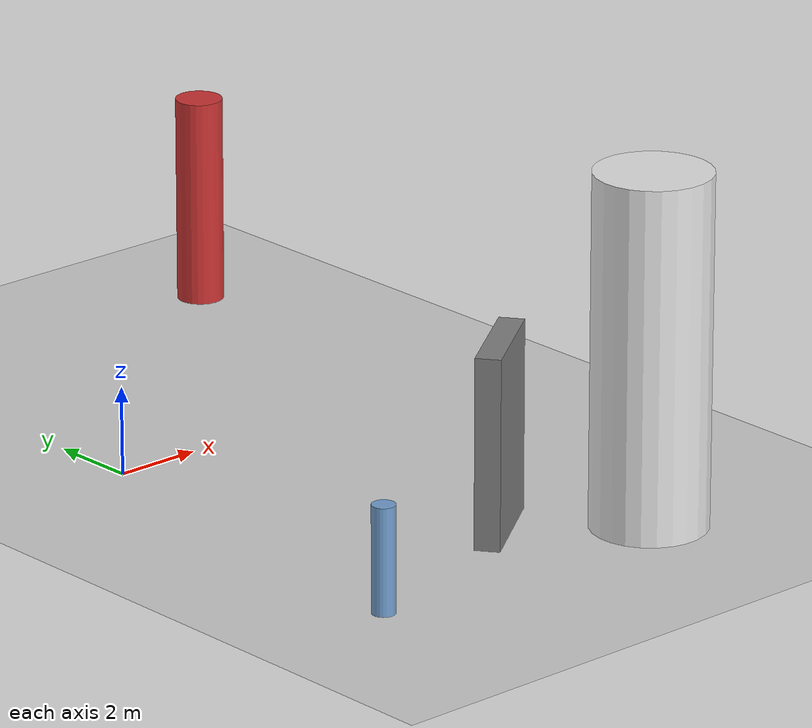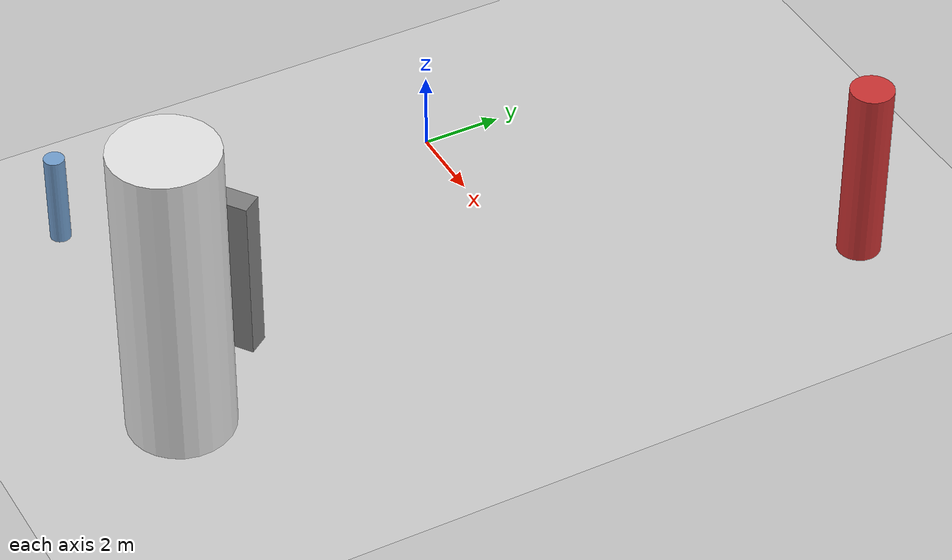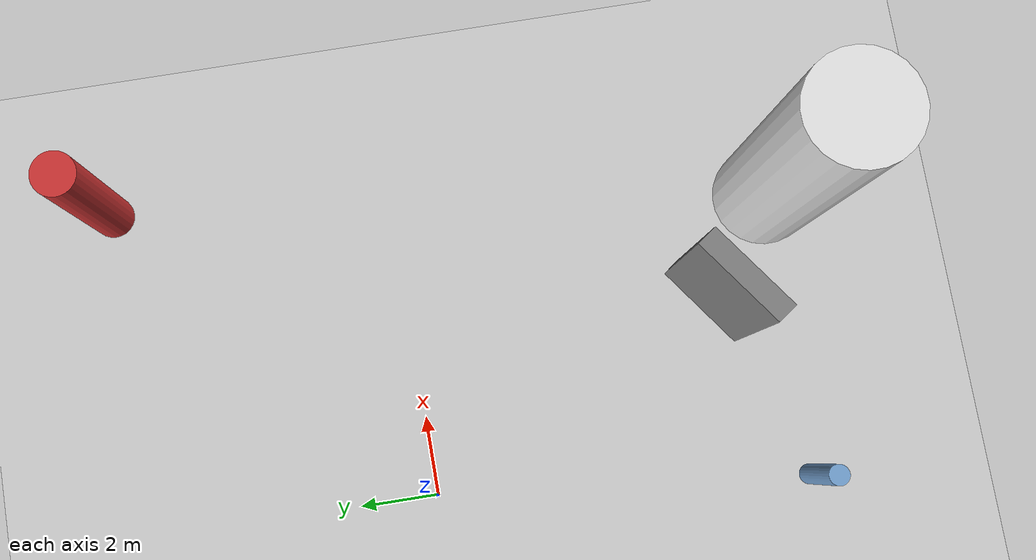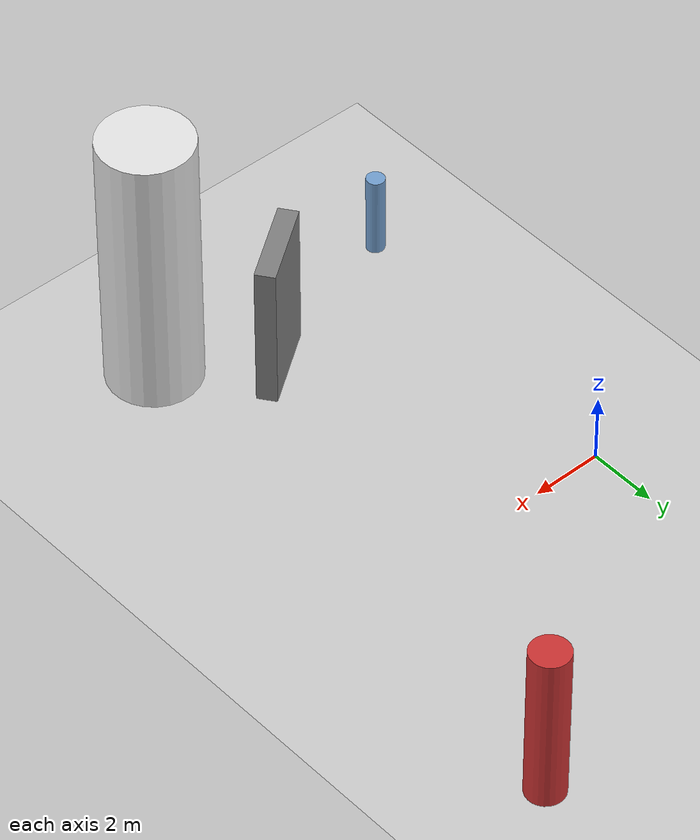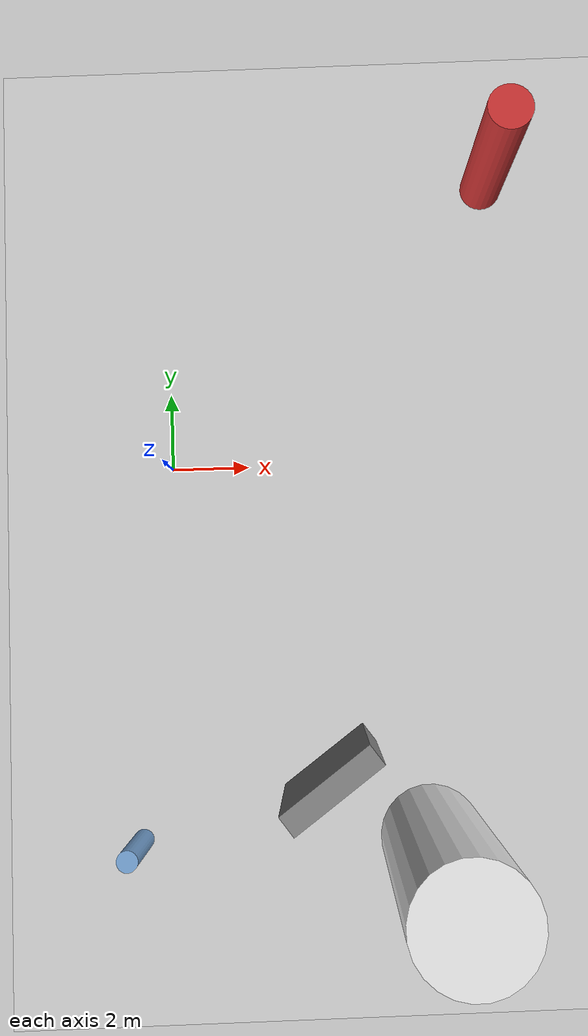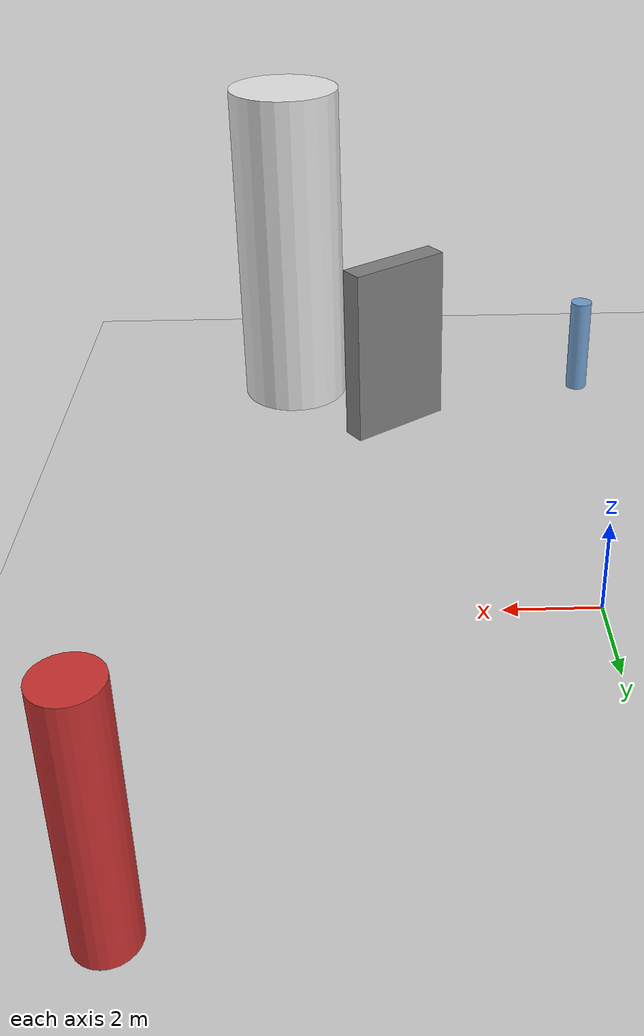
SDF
<?xml version='1.0'?>
<sdf version='1.6'>
  <world name='default'>
    <!-- Sun light -->
    <light name='sun' type='directional'>
      <cast_shadows>1</cast_shadows>
      <pose>0 0 10 0 0 0</pose>
      <diffuse>0.8 0.8 0.8 1</diffuse>
      <specular>0.2 0.2 0.2 1</specular>
      <attenuation>
        <range>1000</range>
        <constant>0.9</constant>
        <linear>0.01</linear>
        <quadratic>0.001</quadratic>
      </attenuation>
      <direction>-0.5 0.1 -0.9</direction>
    </light>

    <!-- Ground plane -->
    <model name='ground_plane'>
      <static>1</static>
      <link name='link'>
        <collision name='collision'>
          <geometry>
            <plane>
              <normal>0 0 1</normal>
              <size>100 100</size>
            </plane>
          </geometry>
          <surface>
            <contact>
              <collide_bitmask>65535</collide_bitmask>
              <ode/>
            </contact>
            <friction>
              <ode>
                <mu>100</mu>
                <mu2>50</mu2>
              </ode>
              <torsional><ode/></torsional>
            </friction>
            <bounce/>
          </surface>
          <max_contacts>10</max_contacts>
        </collision>
        <visual name='visual'>
          <cast_shadows>0</cast_shadows>
          <geometry>
            <plane>
              <normal>0 0 1</normal>
              <size>100 100</size>
            </plane>
          </geometry>
          <material>
            <script>
              <uri>file://media/materials/scripts/gazebo.material</uri>
              <n>Gazebo/Grey</n>
            </script>
          </material>
        </visual>
      </link>
    </model>

    <!-- Environment -->
    <magnetic_field>6e-06 2.3e-05 -4.2e-05</magnetic_field>
    <atmosphere type='adiabatic'/>
    <physics name='default_physics' default='0' type='ode'>
      <gravity>0 0 -9.8</gravity>
      <max_step_size>0.004</max_step_size>
      <real_time_factor>1</real_time_factor>
      <real_time_update_rate>250</real_time_update_rate>
    </physics>
    <scene>
      <ambient>0.4 0.4 0.4 1</ambient>
      <background>0.7 0.7 0.7 1</background>
      <shadows>1</shadows>
    </scene>
    <wind/>
    <spherical_coordinates>
      <surface_model>EARTH_WGS84</surface_model>
      <latitude_deg>0</latitude_deg>
      <longitude_deg>0</longitude_deg>
      <elevation>0</elevation>
      <heading_deg>0</heading_deg>
    </spherical_coordinates>

    <!-- ============ OBSTACLES (4) ============ -->
    <model name='obs_00'>
      <static>1</static>
      <link name='link'>
        <visual name='visual'>
          <geometry>
            <cylinder>
              <radius>0.5420</radius>
              <length>4.8250</length>
            </cylinder>
          </geometry>
          <material>
            <script>
              <n>Gazebo/Red</n>
              <uri>file://media/materials/scripts/gazebo.material</uri>
            </script>
            <ambient>0.8 0.2 0.2 1</ambient>
          </material>
        </visual>
        <collision name='collision'>
          <geometry>
            <cylinder>
              <radius>0.5420</radius>
              <length>4.8250</length>
            </cylinder>
          </geometry>
          <max_contacts>10</max_contacts>
          <surface>
            <contact><ode/></contact>
            <bounce/>
            <friction>
              <ode><mu>1</mu><mu2>1</mu2></ode>
              <torsional><ode/></torsional>
            </friction>
          </surface>
        </collision>
      </link>
      <pose>8.5346 7.3750 2.4125 0 0 2.3248</pose>
    </model>

    <model name='obs_01'>
      <static>1</static>
      <link name='link'>
        <visual name='visual'>
          <geometry>
            <cylinder>
              <radius>1.3026</radius>
              <length>7.9461</length>
            </cylinder>
          </geometry>
          <material>
            <script>
              <n>Gazebo/White</n>
              <uri>file://media/materials/scripts/gazebo.material</uri>
            </script>
            <ambient>0.9 0.9 0.9 1</ambient>
          </material>
        </visual>
        <collision name='collision'>
          <geometry>
            <cylinder>
              <radius>1.3026</radius>
              <length>7.9461</length>
            </cylinder>
          </geometry>
          <max_contacts>10</max_contacts>
          <surface>
            <contact><ode/></contact>
            <bounce/>
            <friction>
              <ode><mu>1</mu><mu2>1</mu2></ode>
              <torsional><ode/></torsional>
            </friction>
          </surface>
        </collision>
      </link>
      <pose>6.4027 -9.7253 3.9731 0 0 1.7241</pose>
    </model>

    <model name='obs_02'>
      <static>1</static>
      <link name='link'>
        <visual name='visual'>
          <geometry>
            <box>
              <size>0.5644 2.5405 4.3176</size>
            </box>
          </geometry>
          <material>
            <script>
              <n>Gazebo/Grey</n>
              <uri>file://media/materials/scripts/gazebo.material</uri>
            </script>
            <ambient>0.5 0.5 0.5 1</ambient>
          </material>
        </visual>
        <collision name='collision'>
          <geometry>
            <box>
              <size>0.5644 2.5405 4.3176</size>
            </box>
          </geometry>
          <max_contacts>10</max_contacts>
          <surface>
            <contact><ode/></contact>
            <bounce/>
            <friction>
              <ode><mu>1</mu><mu2>1</mu2></ode>
              <torsional><ode/></torsional>
            </friction>
          </surface>
        </collision>
      </link>
      <pose>3.8759 -7.7744 2.1588 0 0 2.1952</pose>
    </model>

    <model name='obs_03'>
      <static>1</static>
      <link name='link'>
        <visual name='visual'>
          <geometry>
            <cylinder>
              <radius>0.2612</radius>
              <length>2.4049</length>
            </cylinder>
          </geometry>
          <material>
            <script>
              <n>Gazebo/Blue</n>
              <uri>file://media/materials/scripts/gazebo.material</uri>
            </script>
            <ambient>0.447 0.624 0.812 1</ambient>
          </material>
        </visual>
        <collision name='collision'>
          <geometry>
            <cylinder>
              <radius>0.2612</radius>
              <length>2.4049</length>
            </cylinder>
          </geometry>
          <max_contacts>10</max_contacts>
          <surface>
            <contact><ode/></contact>
            <bounce/>
            <friction>
              <ode><mu>1</mu><mu2>1</mu2></ode>
              <torsional><ode/></torsional>
            </friction>
          </surface>
        </collision>
      </link>
      <pose>-0.9988 -9.5450 1.2024 0 0 0.8025</pose>
    </model>

    <!-- GUI camera -->
    <gui fullscreen='0'>
      <camera name='user_camera'>
        <pose>-15 0 18 0 0.85 0.15</pose>
        <view_controller>orbit</view_controller>
        <projection_type>perspective</projection_type>
      </camera>
    </gui>
  </world>
</sdf>
